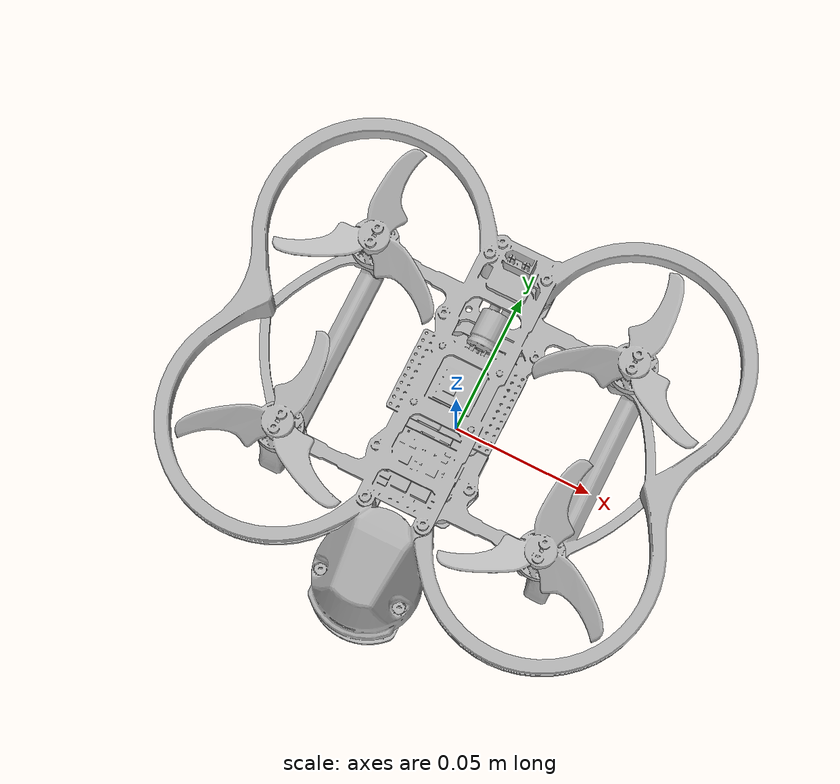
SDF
<?xml version='1.0' encoding='UTF-8'?>
<sdf version="1.9">
  <model name="x500_base">
    <pose>0 0 0.0438 0 0 0</pose>
    <self_collide>false</self_collide>
    <static>false</static>
    <link name="base_link">
      <inertial>
        <mass>0.26899</mass>
        <inertia>
          <ixx>0.000273840576</ixx>
          <ixy>0</ixy>
          <ixz>0</ixz>
          <iyy>0.000361785163</iyy>
          <iyz>0</iyz>
          <izz>0.000433925618</izz>
        </inertia>
      </inertial>
      <gravity>true</gravity>
      <velocity_decay />
      <collision name="obrik_body_collision">
        <pose>0 -0.0054 -0.00545 0 0 0</pose>
        <geometry>
          <box>
            <size>0.170 0.1552 0.0767</size>
          </box>
        </geometry>
        <surface>
          <contact>
            <ode>
              <min_depth>0.001</min_depth>
              <max_vel>0</max_vel>
            </ode>
          </contact>
          <friction>
            <ode />
          </friction>
        </surface>
      </collision>
      <visual name="obrik_body_visual">
        <pose>0 0 0 0 0 0</pose>
        <geometry>
          <mesh>
            <scale>1 1 1</scale>
            <uri>model://x500_obrik_base/meshes/obrik_base_clean.obj</uri>
          </mesh>
        </geometry>
      </visual>
      <sensor name="air_pressure_sensor" type="air_pressure">
        <always_on>1</always_on>
        <update_rate>50</update_rate>
        <air_pressure>
          <pressure>
            <noise type="gaussian">
              <mean>0</mean>
              <stddev>3</stddev>
            </noise>
          </pressure>
        </air_pressure>
      </sensor>
      <sensor name="magnetometer_sensor" type="magnetometer">
        <always_on>1</always_on>
        <update_rate>100</update_rate>
        <magnetometer>
          <x>
            <noise type="gaussian">
              <stddev>0.0001</stddev>
            </noise>
          </x>
          <y>
            <noise type="gaussian">
              <stddev>0.0001</stddev>
            </noise>
          </y>
          <z>
            <noise type="gaussian">
              <stddev>0.0001</stddev>
            </noise>
          </z>
        </magnetometer>
      </sensor>
      <sensor name="imu_sensor" type="imu">
        <always_on>1</always_on>
        <update_rate>250</update_rate>
        <imu>
          <angular_velocity>
            <x>
              <noise type="gaussian">
                <mean>0.0</mean>
                <stddev>0.0008726646</stddev>
              </noise>
            </x>
            <y>
              <noise type="gaussian">
                <mean>0.0</mean>
                <stddev>0.0008726646</stddev>
              </noise>
            </y>
            <z>
              <noise type="gaussian">
                <mean>0.0</mean>
                <stddev>0.0008726646</stddev>
              </noise>
            </z>
          </angular_velocity>
          <linear_acceleration>
            <x>
              <noise type="gaussian">
                <mean>0.0</mean>
                <stddev>0.00637</stddev>
              </noise>
            </x>
            <y>
              <noise type="gaussian">
                <mean>0.0</mean>
                <stddev>0.00637</stddev>
              </noise>
            </y>
            <z>
              <noise type="gaussian">
                <mean>0.0</mean>
                <stddev>0.00686</stddev>
              </noise>
            </z>
          </linear_acceleration>
        </imu>
      </sensor>
      <sensor name="navsat_sensor" type="navsat">
        <always_on>1</always_on>
        <update_rate>30</update_rate>
      </sensor>
    </link>
    <link name="rotor_0">
      <gravity>true</gravity>
      <self_collide>false</self_collide>
      <velocity_decay />
      <pose>0.046111 -0.033581 0.013900 0 0 0</pose>
      <inertial>
        <mass>0.001</mass>
        <inertia>
          <ixx>2.8e-7</ixx>
          <iyy>2.9e-7</iyy>
          <izz>5.7e-7</izz>
        </inertia>
      </inertial>
      <visual name="obrik_prop_ccw_rear_right_visual">
        <pose>0 0 0 0 0 0</pose>
        <geometry>
          <mesh>
            <scale>1 1 1</scale>
            <uri>model://x500_base/meshes/obrik_prop_ccw.obj</uri>
          </mesh>
        </geometry>
      </visual>
    </link>
    <joint name="rotor_0_joint" type="revolute">
      <parent>base_link</parent>
      <child>rotor_0</child>
      <axis>
        <xyz>0 0 1</xyz>
        <limit>
          <lower>-1e+16</lower>
          <upper>1e+16</upper>
        </limit>
        <dynamics>
          <spring_reference>0</spring_reference>
          <spring_stiffness>0</spring_stiffness>
        </dynamics>
      </axis>
    </joint>
    <link name="rotor_1">
      <gravity>true</gravity>
      <self_collide>false</self_collide>
      <velocity_decay />
      <pose>-0.046111 0.033581 0.013900 0 0 0</pose>
      <inertial>
        <mass>0.001</mass>
        <inertia>
          <ixx>2.8e-7</ixx>
          <iyy>2.9e-7</iyy>
          <izz>5.7e-7</izz>
        </inertia>
      </inertial>
      <visual name="obrik_prop_ccw_front_left_visual">
        <pose>0 0 0 0 0 0</pose>
        <geometry>
          <mesh>
            <scale>1 1 1</scale>
            <uri>model://x500_base/meshes/obrik_prop_ccw.obj</uri>
          </mesh>
        </geometry>
      </visual>
    </link>
    <joint name="rotor_1_joint" type="revolute">
      <parent>base_link</parent>
      <child>rotor_1</child>
      <axis>
        <xyz>0 0 1</xyz>
        <limit>
          <lower>-1e+16</lower>
          <upper>1e+16</upper>
        </limit>
        <dynamics>
          <spring_reference>0</spring_reference>
          <spring_stiffness>0</spring_stiffness>
        </dynamics>
      </axis>
    </joint>
    <link name="rotor_2">
      <gravity>true</gravity>
      <self_collide>false</self_collide>
      <velocity_decay />
      <pose>0.046111 0.033581 0.013900 0 0 0</pose>
      <inertial>
        <mass>0.001</mass>
        <inertia>
          <ixx>2.8e-7</ixx>
          <iyy>2.9e-7</iyy>
          <izz>5.7e-7</izz>
        </inertia>
      </inertial>
      <visual name="obrik_prop_cw_front_right_visual">
        <pose>0 0 0 0 0 0</pose>
        <geometry>
          <mesh>
            <scale>1 1 1</scale>
            <uri>model://x500_base/meshes/obrik_prop_cw.obj</uri>
          </mesh>
        </geometry>
      </visual>
    </link>
    <joint name="rotor_2_joint" type="revolute">
      <parent>base_link</parent>
      <child>rotor_2</child>
      <axis>
        <xyz>0 0 1</xyz>
        <limit>
          <lower>-1e+16</lower>
          <upper>1e+16</upper>
        </limit>
        <dynamics>
          <spring_reference>0</spring_reference>
          <spring_stiffness>0</spring_stiffness>
        </dynamics>
      </axis>
    </joint>
    <link name="rotor_3">
      <gravity>true</gravity>
      <self_collide>false</self_collide>
      <velocity_decay />
      <pose>-0.046111 -0.033581 0.013900 0 0 0</pose>
      <inertial>
        <mass>0.001</mass>
        <inertia>
          <ixx>2.8e-7</ixx>
          <iyy>2.9e-7</iyy>
          <izz>5.7e-7</izz>
        </inertia>
      </inertial>
      <visual name="obrik_prop_cw_rear_left_visual">
        <pose>0 0 0 0 0 0</pose>
        <geometry>
          <mesh>
            <scale>1 1 1</scale>
            <uri>model://x500_base/meshes/obrik_prop_cw.obj</uri>
          </mesh>
        </geometry>
      </visual>
    </link>
    <joint name="rotor_3_joint" type="revolute">
      <parent>base_link</parent>
      <child>rotor_3</child>
      <axis>
        <xyz>0 0 1</xyz>
        <limit>
          <lower>-1e+16</lower>
          <upper>1e+16</upper>
        </limit>
        <dynamics>
          <spring_reference>0</spring_reference>
          <spring_stiffness>0</spring_stiffness>
        </dynamics>
      </axis>
    </joint>
  </model>
</sdf>
